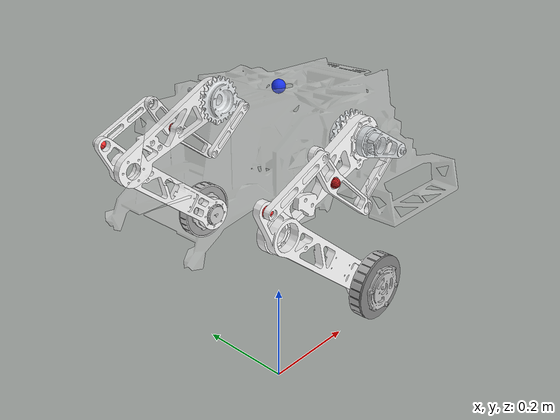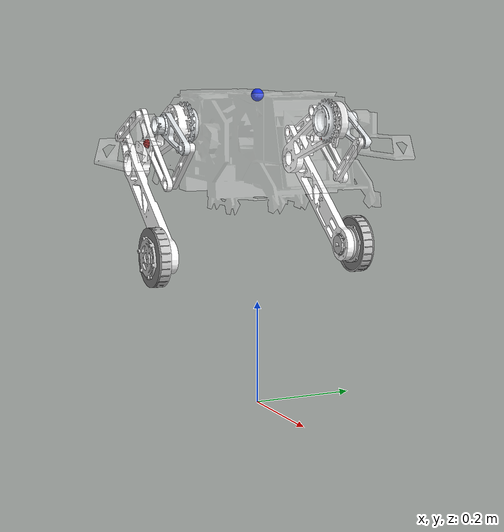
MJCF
<mujoco model="at_wheel_leg">
    <compiler angle="radian" />
    <option timestep="0.002" integrator="RK4" gravity="0 0 -9.81" />

    <asset>
        <mesh name="base_link" file="base_link.STL" />
        <mesh name="left_front1_link" file="left_front1_link.STL" />
        <mesh name="left_front2_link" file="left_front2_link.STL" />
        <mesh name="left_front3_link" file="left_front3_link.STL" />
        <mesh name="left_front4_link" file="left_front4_link.STL" />
        <mesh name="left_rear1_link" file="left_rear1_link.STL" />
        <mesh name="left_rear2_link" file="left_rear2_link.STL" />
        <mesh name="left_wheel_link" file="left_wheel_link.STL" />
        <mesh name="right_front1_link" file="right_front1_link.STL" />
        <mesh name="right_front2_link" file="right_front2_link.STL" />
        <mesh name="right_front3_link" file="right_front3_link.STL" />
        <mesh name="right_front4_link" file="right_front4_link.STL" />
        <mesh name="right_rear1_link" file="right_rear1_link.STL" />
        <mesh name="right_rear2_link" file="right_rear2_link.STL" />
        <mesh name="right_wheel_link" file="right_wheel_link.STL" />
    </asset>

    <worldbody>
        <body name="base_link" pos="0 0 0.6">
            <freejoint name="floating_base" />
            <inertial pos="0.0166017 -0.00156965 -0.09477296" mass="10.5125949"
                fullinertia="0.14496049 0.14966292 0.24991099 0 -0.00068753 0.00038021" />
            <geom type="mesh" rgba="1 1 1 0.25" mesh="base_link"
                friction="0.01 0.005 0.0001" />
            <site name="imu" pos="0 0 0" size="0.012" rgba="0.1 0.2 0.9 1" />
            <body name="left_front1_link" pos="0 0.185 -0.053" quat="0.980173 0 0.198145 0">
                <inertial pos="0.0149971 -0.0168864 3.71072e-08"
                    quat="-0.146949 0.691669 0.146949 0.691669" mass="0.26714"
                    diaginertia="0.00028002 0.000249134 0.000151946" />
                <joint name="base_link_left_front1_link_joint" pos="0 0 0" axis="0 1 0"
                    range="-3.14 3.14" actuatorfrcrange="-40 40" frictionloss="0.1"
                    damping="0.02" />
                <geom type="mesh" rgba="0.898039 0.917647 0.929412 1" mesh="left_front1_link" />
                <body name="left_front2_link" pos="0.0945 -0.01025 0" quat="0.980173 0 -0.198145 0">
                    <inertial pos="-0.0425674 -0.00112033 -0.0367706"
                        quat="0.642976 0.294248 0.294248 0.642976" mass="0.0214872"
                        diaginertia="3.386e-05 3.32011e-05 1.01895e-06" />
                    <joint name="left_front1_link_left_front2_link_joint" pos="0 0 0" axis="0 -1 0"
                        range="-3.14 3.14" />
                    <geom type="mesh" rgba="1 1 1 1" mesh="left_front2_link" />
                    <body name="left_front3_link" pos="-0.085135 0.01075 -0.073541">
                        <inertial pos="-0.070230416 0 0.060949969"
                            quat="0.64923891 -0.28015859 -0.28015859 0.64923891" mass="0.0372564367946"
                            diaginertia="0.00012181 0.00011736177 5.0682323e-06" />
                        <joint name="left_front2_link_left_front3_link_joint" pos="0 0 0"
                            axis="0 -1 0" range="-3.14 3.14" />
                        <geom type="mesh" rgba="1 1 1 1" mesh="left_front3_link" />
                        <site name="left_site1_link" pos="-0.087675 0.00575 0.070493" size="0.008"
                            rgba="1 0.2 0.2 1" />
                        <body name="left_front4_link" pos="-0.12606 0.01075 0.12295">
                            <inertial pos="-0.052391036 0.0011318944 -0.024294891"
                                quat="0.59596015 -0.38056733 0.38056733 -0.59596015" mass="0.023590747855"
                                diaginertia="3.774e-05 3.7061236e-05 1.0587639e-06" />
                            <joint name="left_front3_link_left_front4_link_joint" pos="0 0 0"
                                axis="0 -1 0" range="-3.14 3.14" />
                            <geom type="mesh" rgba="1 1 1 1" mesh="left_front4_link" />
                            <site name="left_site2_link" pos="-0.10478 -0.005 -0.04859" size="0.008"
                                rgba="1 0.2 0.2 1" />
                        </body>
                    </body>
                </body>
            </body>
            <body name="left_rear1_link" pos="0 0.1695 -0.053"
                quat="0.215403 2.79576e-06 0.976525 2.79576e-06">
                <inertial pos="0.076749202 9.471938e-05 -0.0027258467"
                    quat="0.50354123 -0.50208827 0.50436877 -0.48986298" mass="0.313983977716"
                    diaginertia="0.0023006144 0.002184833 0.00014448259" />
                <joint name="base_link_left_rear1_link_joint" pos="0 0 0" axis="0 1 0"
                    range="-3.14 3.14" actuatorfrcrange="-40 40" frictionloss="0.1"
                    damping="0.02" />
                <geom type="mesh" rgba="1 1 1 1" mesh="left_rear1_link" />
                <site name="left_site11_link" pos="0.0945 0.02175 0" size="0.008" rgba="1 0.2 0.2 1" />
                <body name="left_rear2_link" pos="0.21 0.0165 0"
                    quat="0.215403 2.79576e-06 -0.976525 -2.79576e-06">
                    <inertial pos="0.095880953 0.00031448464 -0.076093802"
                        quat="-0.30025086 0.6414495 -0.63986833 0.29826244" mass="0.219518661772"
                        diaginertia="0.0020484542 0.0019837784 7.2297429e-05" />
                    <joint name="left_rear1_link_left_rear2_link_joint" pos="0 0 0" axis="0 1 0"
                        range="-3.14 3.14" />
                    <geom type="mesh" rgba="1 1 1 1" mesh="left_rear2_link" />
                    <site name="left_site22_link" pos="-0.038389 0.00525 0.052452" size="0.008"
                        rgba="1 0.2 0.2 1" />
                    <body name="left_wheel_link" pos="0.19483 0.0155 -0.15665">
                        <inertial pos="0.000229965 0.00361869 -0.000125007"
                            quat="0.685146 0.185752 0.187275 0.678969" mass="0.47"
                            diaginertia="0.000399918 0.000299408 0.000297384" />
                        <joint name="left_rear2_link_left_wheel_link_joint" pos="0 0 0" axis="0 1 0" />
                        <geom type="mesh" rgba="0.752941 0.752941 0.752941 1"
                            mesh="left_wheel_link" contype="0" conaffinity="0" />
                        <geom type="cylinder" pos="0 0.013 0"
                            quat="0.70710678 0.70710678 0 0" size="0.056 0.0105" />
                    </body>
                </body>
            </body>
            <body name="right_front1_link" pos="0 -0.185 -0.053" quat="0.980173 0 0.198145 0">
                <inertial pos="0.014997 0.0168864 4.1044e-08"
                    quat="0.147521 0.691634 -0.147357 0.691495" mass="0.267145"
                    diaginertia="0.00027966 0.000249196 0.000152254" />
                <joint name="base_link_right_front1_link_joint" pos="0 0 0" axis="0 1 0"
                    range="-3.14 3.14" actuatorfrcrange="-40 40" frictionloss="0.1"
                    damping="0.02" />
                <geom type="mesh" rgba="0.898039 0.917647 0.929412 1" mesh="right_front1_link" />
                <body name="right_front2_link" pos="0.0945 0.01025 0" quat="0.980173 0 -0.198145 0">
                    <inertial pos="-0.0425674 0.00112033 -0.0367706"
                        quat="0.642976 0.294248 0.294248 0.642976" mass="0.0214872"
                        diaginertia="3.386e-05 3.32011e-05 1.01895e-06" />
                    <joint name="right_front1_link_right_front2_link_joint" pos="0 0 0" axis="0 1 0"
                        range="-3.14 3.14" />
                    <geom type="mesh" rgba="1 1 1 1" mesh="right_front2_link" />
                    <body name="right_front3_link" pos="-0.085135 -0.01075 -0.073541">
                        <inertial pos="-0.07023045 0 0.060949928"
                            quat="0.64923891 -0.28015859 -0.28015859 0.64923891" mass="0.0372564367946"
                            diaginertia="0.00012181 0.00011736177 5.0682323e-06" />
                        <joint name="right_front2_link_right_front3_link_joint" pos="0 0 0"
                            axis="0 -1 0" range="-3.14 3.14" />
                        <geom type="mesh" rgba="1 1 1 1" mesh="right_front3_link" />
                        <site name="right_site1_link" pos="-0.087675 -0.00575 0.070493" size="0.008"
                            rgba="1 0.2 0.2 1" />
                        <body name="right_front4_link" pos="-0.12606 -0.01075 0.12295">
                            <inertial pos="-0.052391038 -0.0011318944 -0.024294895"
                                quat="0.59596015 -0.38056733 0.38056733 -0.59596015" mass="0.023590747855"
                                diaginertia="3.774e-05 3.7061236e-05 1.0587639e-06" />
                            <joint name="right_front3_link_right_front4_link_joint" pos="0 0 0"
                                axis="0 -1 0" range="-3.14 3.14" />
                            <geom type="mesh" rgba="1 1 1 1" mesh="right_front4_link" />
                            <site name="right_site2_link" pos="-0.10478 0.005 -0.04859" size="0.008"
                                rgba="1 0.2 0.2 1" />
                        </body>
                    </body>
                </body>
            </body>
            <body name="right_rear1_link" pos="0 -0.1695 -0.053"
                quat="0.215403 2.79576e-06 0.976525 2.79576e-06">
                <inertial pos="0.0767492 -9.4717031e-05 -0.0027258468"
                    quat="0.50354123 0.50208827 0.50436877 0.48986298" mass="0.313983977716"
                    diaginertia="0.0023006144 0.002184833 0.00014448259" />
                <joint name="base_link_right_rear1_link_joint" pos="0 0 0" axis="0 1 0"
                    range="-3.14 3.14" actuatorfrcrange="-40 40" frictionloss="0.1"
                    damping="0.02" />
                <geom type="mesh" rgba="1 1 1 1" mesh="right_rear1_link" />
                <site name="right_site11_link" pos="0.0945 -0.02175 0" size="0.008"
                    rgba="1 0.2 0.2 1" />
                <body name="right_rear2_link" pos="0.21 -0.0165 0" quat="0.215402 0 -0.976525 0">
                    <inertial pos="0.096353118 -0.00015452341 -0.076486714"
                        quat="0.29981761 0.64096634 0.64036001 0.29868147" mass="0.221615349787"
                        diaginertia="0.0020559266 0.0019908736 7.2699874e-05" />
                    <joint name="right_rear1_link_right_rear2_link_joint" pos="0 0 0" axis="0 -1 0"
                        range="-3.14 3.14" />
                    <geom type="mesh" rgba="1 1 1 1" mesh="right_rear2_link" />
                    <site name="right_site22_link" pos="-0.038389 -0.00525 0.052452" size="0.008"
                        rgba="1 0.2 0.2 1" />
                    <body name="right_wheel_link" pos="0.19483 -0.0155 -0.15665">
                        <inertial pos="0.000216811 -0.00361869 -0.000146634"
                            quat="0.67653 0.196405 0.194486 0.682574" mass="0.47"
                            diaginertia="0.000399918 0.000299403 0.000297389" />
                        <joint name="right_rear2_link_right_wheel_link_joint" pos="0 0 0"
                            axis="0 1 0" />
                        <geom type="mesh" rgba="0.752941 0.752941 0.752941 1"
                            mesh="right_wheel_link" contype="0" conaffinity="0" />
                        <geom type="cylinder" pos="0 -0.013 0"
                            quat="0.70710678 0.70710678 0 0" size="0.056 0.0105" />
                    </body>
                </body>
            </body>
        </body>
    </worldbody>

    <equality>
        <connect name="left_front4_left_rear2_connect" site1="left_site2_link"
            site2="left_site22_link" solref="0.006 1" solimp="0.95 0.99 0.001" />
        <connect name="left_front3_left_rear1_connect" site1="left_site1_link"
            site2="left_site11_link" solref="0.006 1" solimp="0.95 0.99 0.001" />
        <connect name="right_front4_right_rear2_connect" site1="right_site2_link"
            site2="right_site22_link" solref="0.006 1" solimp="0.95 0.99 0.001" />
        <connect name="right_front3_right_rear1_connect" site1="right_site1_link"
            site2="right_site11_link" solref="0.006 1" solimp="0.95 0.99 0.001" />
    </equality>

    <contact>
        <!-- Directly joint-connected bodies from the URDF. -->
        <exclude body1="base_link" body2="left_front1_link" />
        <exclude body1="left_front1_link" body2="left_rear1_link" />
        <exclude body1="left_front1_link" body2="left_front2_link" />
        <exclude body1="left_front2_link" body2="left_front3_link" />
        <exclude body1="left_front3_link" body2="left_front4_link" />
        <exclude body1="base_link" body2="left_rear1_link" />
        <exclude body1="left_rear1_link" body2="left_rear2_link" />
        <exclude body1="left_rear2_link" body2="left_wheel_link" />
        <exclude body1="base_link" body2="right_front1_link" />
        <exclude body1="right_front1_link" body2="right_rear1_link" />
        <exclude body1="right_front1_link" body2="right_front2_link" />
        <exclude body1="right_front2_link" body2="right_front3_link" />
        <exclude body1="right_front3_link" body2="right_front4_link" />
        <exclude body1="base_link" body2="right_rear1_link" />
        <exclude body1="right_rear1_link" body2="right_rear2_link" />
        <exclude body1="right_rear2_link" body2="right_wheel_link" />

        <!-- Equality-connected bodies are treated as adjacent as requested. -->
        <exclude body1="left_front4_link" body2="left_rear2_link" />
        <exclude body1="left_front3_link" body2="left_rear1_link" />
        <exclude body1="right_front4_link" body2="right_rear2_link" />
        <exclude body1="right_front3_link" body2="right_rear1_link" />

        <exclude body1="base_link" body2="left_front2_link" />
        <exclude body1="base_link" body2="left_front3_link" />
        <exclude body1="base_link" body2="left_front4_link" />
        <exclude body1="base_link" body2="right_front2_link" />
        <exclude body1="base_link" body2="right_front3_link" />
        <exclude body1="base_link" body2="right_front4_link" />

        <exclude body1="base_link" body2="left_rear2_link" />
        <exclude body1="base_link" body2="right_rear2_link" />

        <exclude body1="left_front2_link" body2="left_rear1_link" />
        <exclude body1="right_front2_link" body2="right_rear1_link" />

        <exclude body1="left_front4_link" body2="left_wheel_link" />
        <exclude body1="right_front4_link" body2="right_wheel_link" />

    </contact>

    <actuator>
        <motor name="left_front_hip_motor" joint="base_link_left_front1_link_joint" gear="1"
            ctrllimited="true" ctrlrange="-40 40" />
        <motor name="left_rear_hip_motor" joint="base_link_left_rear1_link_joint" gear="1"
            ctrllimited="true" ctrlrange="-40 40" />
        <motor name="left_wheel_motor" joint="left_rear2_link_left_wheel_link_joint" gear="1"
            ctrllimited="true" ctrlrange="-10 10" />
        <motor name="right_front_hip_motor" joint="base_link_right_front1_link_joint" gear="1"
            ctrllimited="true" ctrlrange="-40 40" />
        <motor name="right_rear_hip_motor" joint="base_link_right_rear1_link_joint" gear="1"
            ctrllimited="true" ctrlrange="-40 40" />
        <motor name="right_wheel_motor" joint="right_rear2_link_right_wheel_link_joint" gear="1"
            ctrllimited="true" ctrlrange="-10 10" />
    </actuator>

    <sensor>
        <actuatorpos name="left_front_hip_motor_pos" actuator="left_front_hip_motor" />
        <actuatorpos name="left_rear_hip_motor_pos" actuator="left_rear_hip_motor" />
        <actuatorpos name="left_wheel_motor_pos" actuator="left_wheel_motor" />
        <actuatorpos name="right_front_hip_motor_pos" actuator="right_front_hip_motor" />
        <actuatorpos name="right_rear_hip_motor_pos" actuator="right_rear_hip_motor" />
        <actuatorpos name="right_wheel_motor_pos" actuator="right_wheel_motor" />

        <actuatorvel name="left_front_hip_motor_vel" actuator="left_front_hip_motor" />
        <actuatorvel name="left_rear_hip_motor_vel" actuator="left_rear_hip_motor" />
        <actuatorvel name="left_wheel_motor_vel" actuator="left_wheel_motor" />
        <actuatorvel name="right_front_hip_motor_vel" actuator="right_front_hip_motor" />
        <actuatorvel name="right_rear_hip_motor_vel" actuator="right_rear_hip_motor" />
        <actuatorvel name="right_wheel_motor_vel" actuator="right_wheel_motor" />

        <actuatorfrc name="left_front_hip_motor_force" actuator="left_front_hip_motor" noise="1e-3" />
        <actuatorfrc name="left_rear_hip_motor_force" actuator="left_rear_hip_motor" noise="1e-3" />
        <actuatorfrc name="left_wheel_motor_force" actuator="left_wheel_motor" noise="1e-3" />
        <actuatorfrc name="right_front_hip_motor_force" actuator="right_front_hip_motor"
            noise="1e-3" />
        <actuatorfrc name="right_rear_hip_motor_force" actuator="right_rear_hip_motor" noise="1e-3" />
        <actuatorfrc name="right_wheel_motor_force" actuator="right_wheel_motor" noise="1e-3" />

        <accelerometer name="imu_accelerometer" site="imu" cutoff="157" />
        <gyro name="imu_gyro" site="imu" cutoff="34.9" />
        <framequat name="imu_orientation" objtype="site" objname="imu" />
    </sensor>
</mujoco>
